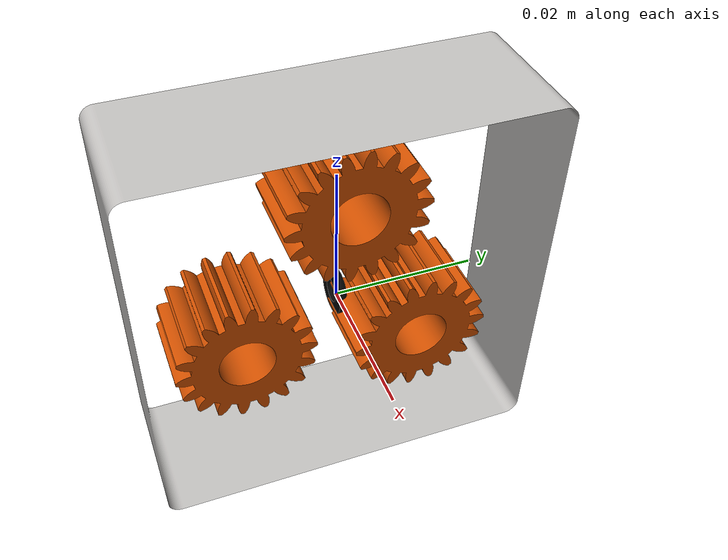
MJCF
<mujoco model="target">
  <compiler meshdir="assets" texturedir="assets" autolimits="true"/>
  <default>
    <default class="visual">
      <geom group="2" type="mesh" contype="0" conaffinity="0"/>
    </default>
    <default class="collision">
      <geom group="3" type="mesh"/>
    </default>
  </default>
  <asset>
    <material name="190,188,186" specular="0.7372549999999999" shininess="1.0" rgba="0.745098 0.737255 0.729412 1.000000"/>
    <material name="207,79,0" specular="1.0" shininess="1.0" rgba="0.811765 0.309804 0.000000 1.000000"/>
    <material name="5,5,5" specular="1.0" shininess="1.0" rgba="0.019608 0.019608 0.019608 1.000000"/>
    <mesh file="object_0.obj"/>
    <mesh file="object_1.obj"/>
    <mesh file="object_2.obj"/>
  </asset>
  <visual>
    <headlight ambient="0.7 0.7 0.7"/>
  </visual>
  <worldbody>
    <body name="object">
      <geom mesh="object_0" material="5,5,5" class="visual"/>
      <geom mesh="object_1" material="207,79,0" class="visual"/>
      <geom mesh="object_2" material="190,188,186" class="visual"/>
      <geom mesh="object_0" class="collision"/>
      <geom mesh="object_1" class="collision"/>
      <geom mesh="object_2" class="collision"/>
    </body>
  </worldbody>
</mujoco>
